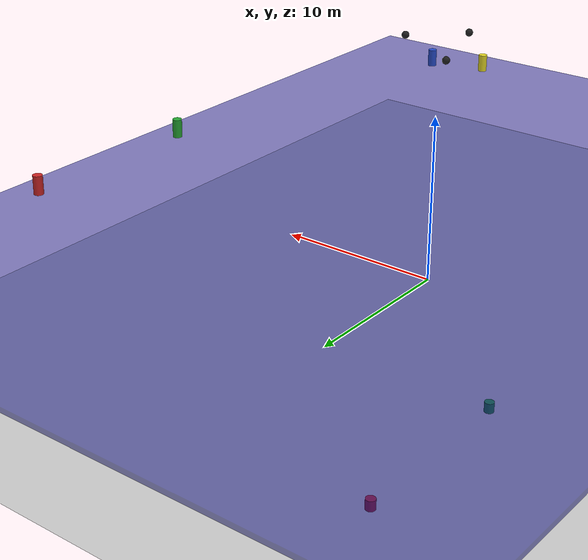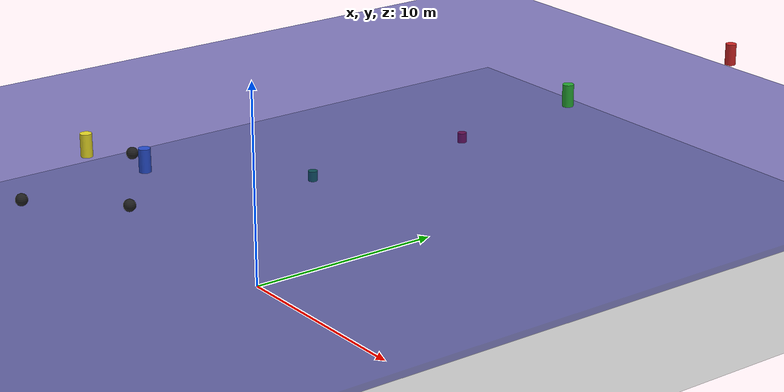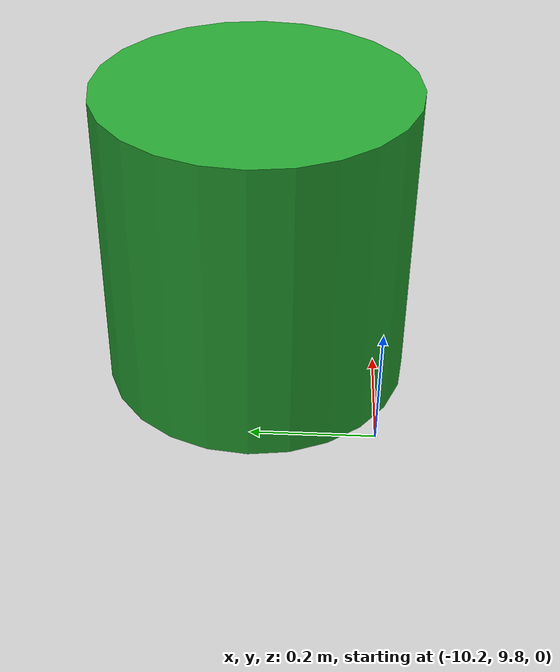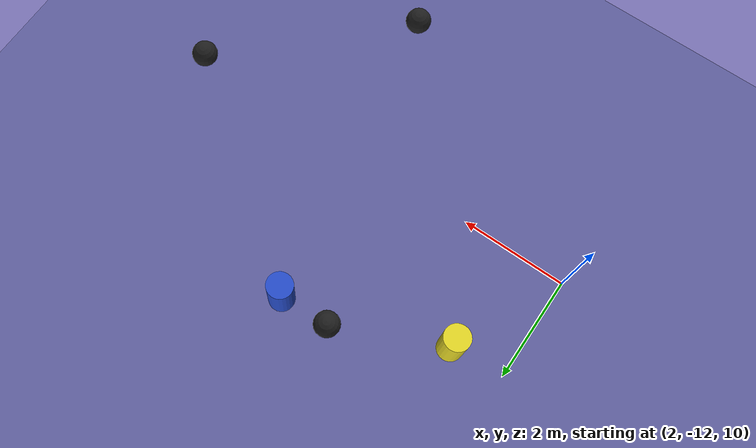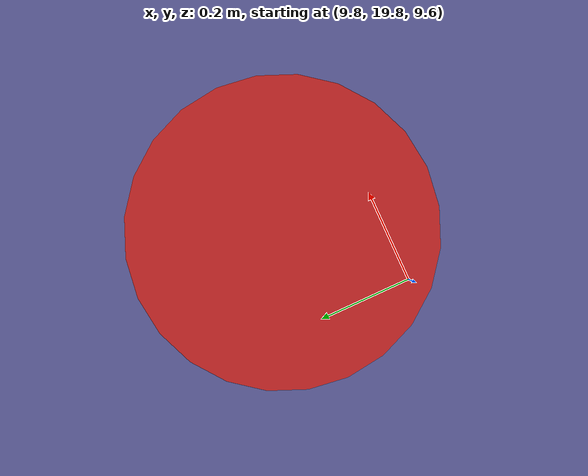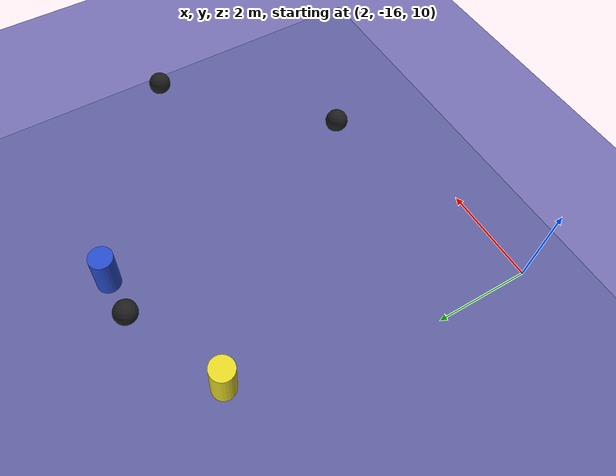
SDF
<sdf version="1.4">
 <world name="lake">
  <include><uri>model://sun</uri></include>
  <model name="ground_plane">
   <static>1</static>
   <link name="link">
    <collision name="collision">
     <geometry><plane><normal>0 0 1</normal><size>100 100</size></plane></geometry>
     <surface><friction><ode><mu>100</mu><mu2>50</mu2></ode></friction></surface>
    </collision>
    <visual name="visual">
     <transparency>0.9</transparency>
     <geometry><plane><normal>0 0 1</normal><size>100 100</size></plane></geometry>
     <material>
      <script><uri>file://media/materials/scripts/gazebo.material</uri><name>Gazebo/Grey</name></script>
     </material>
    </visual>
    <velocity_decay><linear>0</linear><angular>0</angular></velocity_decay>
   </link>
  </model>
  <include><pose>0 0 5 0 0 0</pose><uri>model://models/water_plane</uri></include>
  <include><uri>model://models/buoy_green</uri><pose>-10 10 0 0 0 0</pose><name>buoy1</name></include>
  <include><uri>model://models/buoy_red</uri><pose>-10 20 00 0 0 0</pose></include>
  <include><uri>model://models/buoy_green</uri><pose>10 10 10 0 0 0</pose></include>
  <include><uri>model://models/buoy_red</uri><pose>10 20 10 0 0 0</pose></include>
  <include><uri>model://models/buoy_black</uri><pose>10 -12 10 0 0 0</pose></include>
  <include><uri>model://models/buoy_black</uri><pose>7 -15 10 0 0 0</pose></include>
  <include><uri>model://models/buoy_black</uri><pose>5 -9 10 0 0 0</pose></include>
  <include><uri>model://models/buoy_yellow</uri><pose>3 -10 10 0 0 0</pose><name>by1</name></include>
  <include><uri>model://models/buoy_blue</uri><pose>6 -9 10 0 0 0</pose><name>bb1</name></include>
 </world>
</sdf>

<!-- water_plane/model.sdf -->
<sdf version="1.4">
  <model name='water_plane'>
    <static>1</static>
    <pose>0 0 0 0 0 0</pose>
    <link name='link'>
      <visual name='visual'>
	<cast_shadows>1</cast_shadows>
	<transparency>0.5</transparency>
	<geometry>
	  <plane>
	    <normal>0 0 1</normal>
	    <size>296.9 296.9</size>
	  </plane>
	</geometry>
	<material>
	  <ambient>0 0 0.5 0.5</ambient>
	  <diffuse>0 0 0.5 0.5</diffuse>
	  <specular>0 0 0.5 0.5</specular>
	  <emissive>0 0 0 0</emissive>
	</material>
      </visual>
    </link>
  </model>
</sdf>

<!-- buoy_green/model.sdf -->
<sdf version="1.4">
  <model name="buoy_green">
    <link name="buoyl">
      <pose>0 0 0 0 0 0</pose>
      <velocity_decay>
        <linear>0.001</linear>
        <angular>0.001</angular>
      </velocity_decay>
      <inertial>
        <pose>0 0 -10 0 0 0</pose>
        <mass>10</mass>
        <inertia>
          <ixx>10</ixx>
          <ixy>0</ixy>
          <ixz>0</ixz>
          <iyy>10</iyy>
          <iyz>0</iyz>
          <izz>10</izz>
        </inertia>
      </inertial>
      <collision name="buoyc">
        <geometry>
          <cylinder>
            <radius>0.25</radius>
            <length>1.0</length>
          </cylinder>
        </geometry>
      </collision>
      <visual name="buoyv">
        <geometry>
          <cylinder>
            <radius>0.25</radius>
            <length>1.0</length>
          </cylinder>
        </geometry>
        <material>
          <script>
            <uri>file://media/materials/scripts/gazebo.material</uri>
            <name>Gazebo/Green</name>
          </script>
        </material>
      </visual>
    </link>
    <plugin name="BuoyancyPlugin" filename="libbuoyancy_gazebo_plugin.so">
      <fluid_density>1000</fluid_density>
      <fluid_level>5.0</fluid_level>
      <fluid_drag>10</fluid_drag>
      <link>
        <name>buoyl</name>
        <center_of_volume>0 0 0.5</center_of_volume>
        <area>0.1</area>
        <height>1</height>
      </link>
    </plugin>
  </model>
</sdf>

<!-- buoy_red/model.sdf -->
<sdf version="1.4">
  <model name="buoy_red">
    <link name="buoyl">
      <pose>0 0 0 0 0 0</pose>
      <velocity_decay>
        <linear>0.001</linear>
        <angular>0.001</angular>
      </velocity_decay>
      <inertial>
        <pose>0 0 -10 0 0 0</pose>
        <mass>10</mass>
        <inertia>
          <ixx>10</ixx>
          <ixy>0</ixy>
          <ixz>0</ixz>
          <iyy>10</iyy>
          <iyz>0</iyz>
          <izz>10</izz>
        </inertia>
      </inertial>
      <collision name="buoyc">
        <geometry>
          <cylinder>
            <radius>0.25</radius>
            <length>1.0</length>
          </cylinder>
        </geometry>
      </collision>
      <visual name="buoyv">
        <geometry>
          <cylinder>
            <radius>0.25</radius>
            <length>1.0</length>
          </cylinder>
        </geometry>
        <material>
          <script>
            <uri>file://media/materials/scripts/gazebo.material</uri>
            <name>Gazebo/Red</name>
          </script>
        </material>
      </visual>
    </link>
    <plugin name="BuoyancyPlugin" filename="libbuoyancy_gazebo_plugin.so">
      <fluid_density>1000</fluid_density>
      <fluid_level>5.0</fluid_level>
      <fluid_drag>10</fluid_drag>
      <link>
        <name>buoyl</name>
        <center_of_volume>0 0 0.5</center_of_volume>
        <area>0.1</area>
        <height>1</height>
      </link>
    </plugin>
  </model>
</sdf>

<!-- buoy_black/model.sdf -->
<sdf version="1.4">
  <model name="buoy">
    <link name="buoyl">
      <pose>0 0 0 0 0 0</pose>
      <velocity_decay>
        <linear>0.001</linear>
        <angular>0.001</angular>
      </velocity_decay>
      <inertial>
        <pose>0 0 -10 0 0 0</pose>
        <mass>10</mass>
        <inertia>
          <ixx>10</ixx>
          <ixy>0</ixy>
          <ixz>0</ixz>
          <iyy>10</iyy>
          <iyz>0</iyz>
          <izz>10</izz>
        </inertia>
      </inertial>
      <collision name="buoyc">
        <geometry>
          <sphere>
            <radius>0.25</radius>
          </sphere>
        </geometry>
      </collision>
      <visual name="buoyv">
        <geometry>
          <sphere>
            <radius>0.25</radius>
          </sphere>
        </geometry>
        <material>
          <script>
            <uri>file://media/materials/scripts/gazebo.material</uri>
            <name>Gazebo/Black</name>
          </script>
        </material>
      </visual>
    </link>
    <plugin name="BuoyancyPlugin" filename="libbuoyancy_gazebo_plugin.so">
      <fluid_density>1000</fluid_density>
      <fluid_level>5.0</fluid_level>
      <fluid_drag>10</fluid_drag>
      <link>
        <name>buoyl</name>
        <center_of_volume>0 0 0.5</center_of_volume>
        <area>0.1</area>
        <height>0.5</height>
      </link>
    </plugin>
  </model>
</sdf>

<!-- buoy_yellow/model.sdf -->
<sdf version="1.4">
  <model name="buoy_yellow">
    <link name="buoyl">
      <pose>0 0 0 0 0 0</pose>
      <velocity_decay>
        <linear>0.001</linear>
        <angular>0.001</angular>
      </velocity_decay>
      <inertial>
        <pose>0 0 -10 0 0 0</pose>
        <mass>10</mass>
        <inertia>
          <ixx>10</ixx>
          <ixy>0</ixy>
          <ixz>0</ixz>
          <iyy>10</iyy>
          <iyz>0</iyz>
          <izz>10</izz>
        </inertia>
      </inertial>
      <collision name="buoyc">
        <geometry>
          <cylinder>
            <radius>0.25</radius>
            <length>1.0</length>
          </cylinder>
        </geometry>
      </collision>
      <visual name="buoyv">
        <geometry>
          <cylinder>
            <radius>0.25</radius>
            <length>1.0</length>
          </cylinder>
        </geometry>
        <material>
          <script>
            <uri>file://media/materials/scripts/gazebo.material</uri>
            <name>Gazebo/Yellow</name>
          </script>
        </material>
      </visual>
    </link>
    <plugin name="BuoyancyPlugin" filename="libbuoyancy_gazebo_plugin.so">
      <fluid_density>1000</fluid_density>
      <fluid_level>5.0</fluid_level>
      <fluid_drag>10</fluid_drag>
      <link>
        <name>buoyl</name>
        <center_of_volume>0 0 0.5</center_of_volume>
        <area>0.1</area>
        <height>1</height>
      </link>
    </plugin>
  </model>
</sdf>

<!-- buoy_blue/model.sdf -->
<sdf version="1.4">
  <model name="buoy_blue">
    <link name="buoyl">
      <pose>0 0 0 0 0 0</pose>
      <velocity_decay>
        <linear>0.001</linear>
        <angular>0.001</angular>
      </velocity_decay>
      <inertial>
        <pose>0 0 -10 0 0 0</pose>
        <mass>10</mass>
        <inertia>
          <ixx>10</ixx>
          <ixy>0</ixy>
          <ixz>0</ixz>
          <iyy>10</iyy>
          <iyz>0</iyz>
          <izz>10</izz>
        </inertia>
      </inertial>
      <collision name="buoyc">
        <geometry>
          <cylinder>
            <radius>0.25</radius>
            <length>1.0</length>
          </cylinder>
        </geometry>
      </collision>
      <visual name="buoyv">
        <geometry>
          <cylinder>
            <radius>0.25</radius>
            <length>1.0</length>
          </cylinder>
        </geometry>
        <material>
          <script>
            <uri>file://media/materials/scripts/gazebo.material</uri>
            <name>Gazebo/Blue</name>
          </script>
        </material>
      </visual>
    </link>
    <plugin name="BuoyancyPlugin" filename="libbuoyancy_gazebo_plugin.so">
      <fluid_density>1000</fluid_density>
      <fluid_level>5.0</fluid_level>
      <fluid_drag>10</fluid_drag>
      <link>
        <name>buoyl</name>
        <center_of_volume>0 0 0.5</center_of_volume>
        <area>0.1</area>
        <height>1</height>
      </link>
    </plugin>
  </model>
</sdf>
